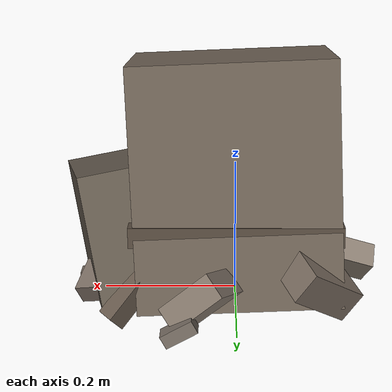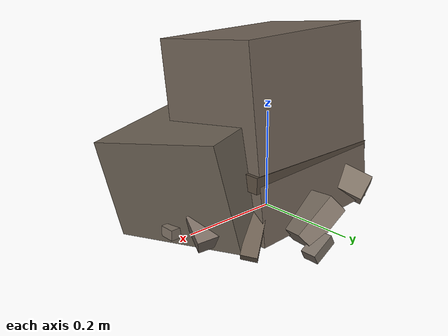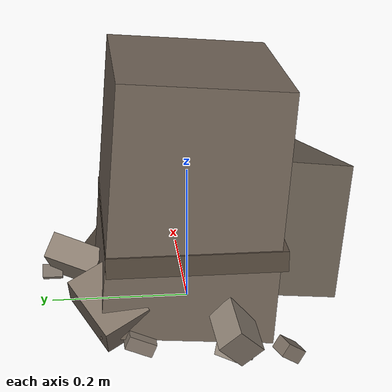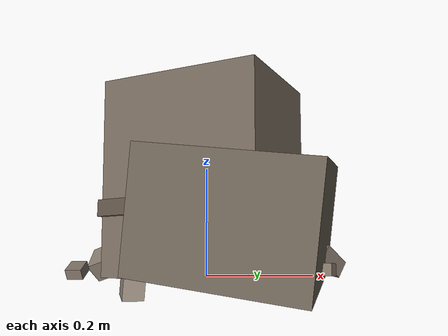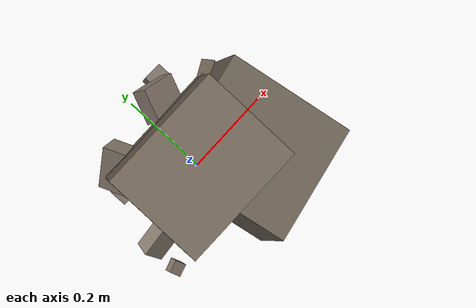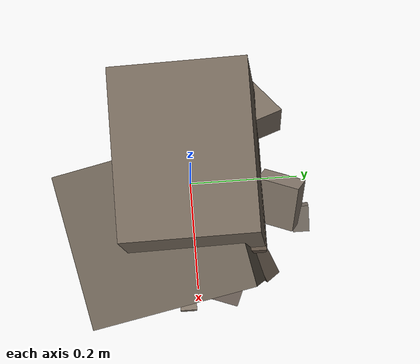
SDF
<?xml version="1.0" ?>
<sdf version="1.6">
  <model name="building_collapsed">
    <static>true</static>

    <!-- 残留半截楼体，倾斜 -->
    <link name="stump">
      <pose>0 0 0.18 0.08 0.04 0</pose>
      <visual name="sv">
        <geometry><box><size>0.30 0.24 0.36</size></box></geometry>
        <material><ambient>0.45 0.40 0.35 1.0</ambient></material>
      </visual>
      <collision name="sc">
        <geometry><box><size>0.30 0.24 0.36</size></box></geometry>
      </collision>
    </link>

    <!-- 断裂上半段横倒在地 -->
    <link name="fallen_top">
      <pose>0.10 -0.06 0.10 -1.4 0.15 0.2</pose>
      <visual name="ftv">
        <geometry><box><size>0.28 0.20 0.30</size></box></geometry>
        <material><ambient>0.42 0.38 0.33 1.0</ambient></material>
      </visual>
      <collision name="ftc">
        <geometry><box><size>0.28 0.20 0.30</size></box></geometry>
      </collision>
    </link>

    <!-- 断裂的裂缝窗口带（碎裂效果） -->
    <link name="cracked_win">
      <pose>0 0 0.12 0 0 0</pose>
      <visual name="cwv">
        <geometry><box><size>0.31 0.25 0.03</size></box></geometry>
        <material><ambient>0.35 0.30 0.25 1.0</ambient></material>
      </visual>
    </link>

    <!-- 大碎块1 -->
    <link name="rb1"><pose>0.15 -0.10 0.06 0.6 0.4 0.3</pose>
      <visual name="rb1v"><geometry><box><size>0.12 0.08 0.06</size></box></geometry>
        <material><ambient>0.50 0.45 0.40 1.0</ambient></material></visual></link>
    <!-- 大碎块2 -->
    <link name="rb2"><pose>-0.12 0.12 0.05 -0.4 -0.5 0.6</pose>
      <visual name="rb2v"><geometry><box><size>0.10 0.07 0.05</size></box></geometry>
        <material><ambient>0.48 0.43 0.38 1.0</ambient></material></visual></link>
    <!-- 大碎块3 -->
    <link name="rb3"><pose>0.05 0.16 0.04 0.3 0.7 -0.2</pose>
      <visual name="rb3v"><geometry><box><size>0.09 0.08 0.04</size></box></geometry>
        <material><ambient>0.52 0.47 0.42 1.0</ambient></material></visual></link>
    <!-- 碎块4 -->
    <link name="r4"><pose>-0.18 -0.05 0.03 0.8 -0.3 0.1</pose>
      <visual name="r4v"><geometry><box><size>0.07 0.05 0.04</size></box></geometry>
        <material><ambient>0.55 0.50 0.45 1.0</ambient></material></visual></link>
    <!-- 碎块5 -->
    <link name="r5"><pose>0.20 0.05 0.03 -0.5 0.2 -0.4</pose>
      <visual name="r5v"><geometry><box><size>0.06 0.06 0.03</size></box></geometry>
        <material><ambient>0.47 0.42 0.38 1.0</ambient></material></visual></link>

    <!-- 地面小碎片 -->
    <link name="d1"><pose>0.22 -0.02 0.01 0 0 0</pose>
      <visual name="d1v"><geometry><box><size>0.04 0.03 0.02</size></box></geometry>
        <material><ambient>0.50 0.45 0.40 1.0</ambient></material></visual></link>
    <link name="d2"><pose>-0.16 0.08 0.01 0.4 0 0</pose>
      <visual name="d2v"><geometry><box><size>0.03 0.04 0.02</size></box></geometry>
        <material><ambient>0.53 0.48 0.43 1.0</ambient></material></visual></link>
    <link name="d3"><pose>0.08 0.20 0.01 0 0.5 0</pose>
      <visual name="d3v"><geometry><box><size>0.05 0.03 0.02</size></box></geometry>
        <material><ambient>0.48 0.44 0.40 1.0</ambient></material></visual></link>
    <link name="d4"><pose>-0.20 -0.12 0.01 0.6 0 0.3</pose>
      <visual name="d4v"><geometry><box><size>0.03 0.03 0.02</size></box></geometry>
        <material><ambient>0.51 0.46 0.41 1.0</ambient></material></visual></link>
    <link name="d5"><pose>0.14 -0.15 0.02 0 0 0.7</pose>
      <visual name="d5v"><geometry><box><size>0.04 0.04 0.02</size></box></geometry>
        <material><ambient>0.49 0.44 0.39 1.0</ambient></material></visual></link>

    <!-- 斜插的断柱 -->
    <link name="pillar">
      <pose>-0.10 -0.08 0.08 0.3 0.0 0.8</pose>
      <visual name="pv"><geometry><box><size>0.04 0.04 0.25</size></box></geometry>
        <material><ambient>0.60 0.55 0.50 1.0</ambient></material></visual>
    </link>

    <!-- 扭曲的钢筋/梁 -->
    <link name="beam">
      <pose>0.12 0.10 0.07 -0.2 0.8 0.5</pose>
      <visual name="bv"><geometry><box><size>0.20 0.03 0.03</size></box></geometry>
        <material><ambient>0.40 0.35 0.30 1.0</ambient></material></visual>
    </link>

    <joint name="j_ft" type="fixed"><parent>stump</parent><child>fallen_top</child></joint>
    <joint name="j_cw" type="fixed"><parent>stump</parent><child>cracked_win</child></joint>
    <joint name="j_r1" type="fixed"><parent>stump</parent><child>rb1</child></joint>
    <joint name="j_r2" type="fixed"><parent>stump</parent><child>rb2</child></joint>
    <joint name="j_r3" type="fixed"><parent>stump</parent><child>rb3</child></joint>
    <joint name="j_r4" type="fixed"><parent>stump</parent><child>r4</child></joint>
    <joint name="j_r5" type="fixed"><parent>stump</parent><child>r5</child></joint>
    <joint name="j_d1" type="fixed"><parent>stump</parent><child>d1</child></joint>
    <joint name="j_d2" type="fixed"><parent>stump</parent><child>d2</child></joint>
    <joint name="j_d3" type="fixed"><parent>stump</parent><child>d3</child></joint>
    <joint name="j_d4" type="fixed"><parent>stump</parent><child>d4</child></joint>
    <joint name="j_d5" type="fixed"><parent>stump</parent><child>d5</child></joint>
    <joint name="j_p" type="fixed"><parent>stump</parent><child>pillar</child></joint>
    <joint name="j_b" type="fixed"><parent>stump</parent><child>beam</child></joint>
  </model>
</sdf>
